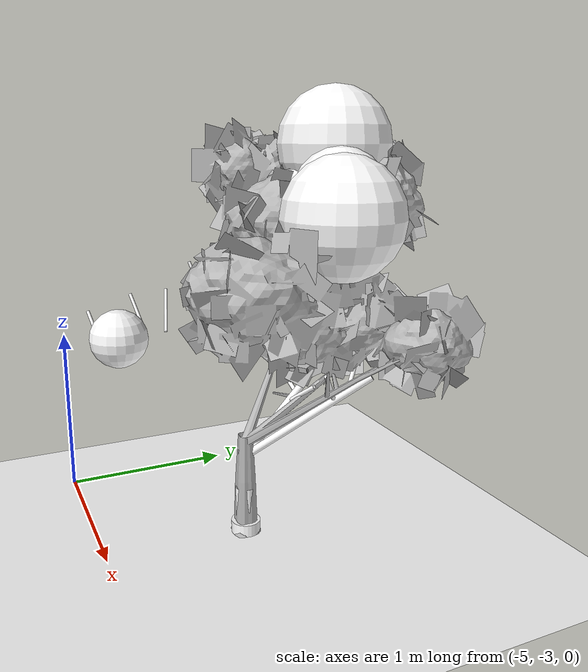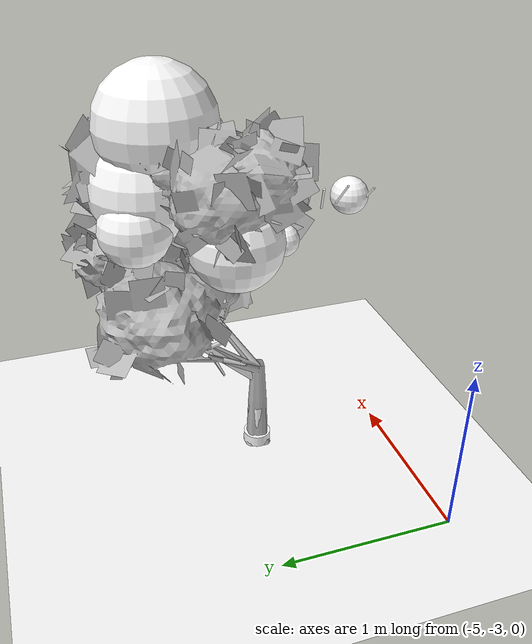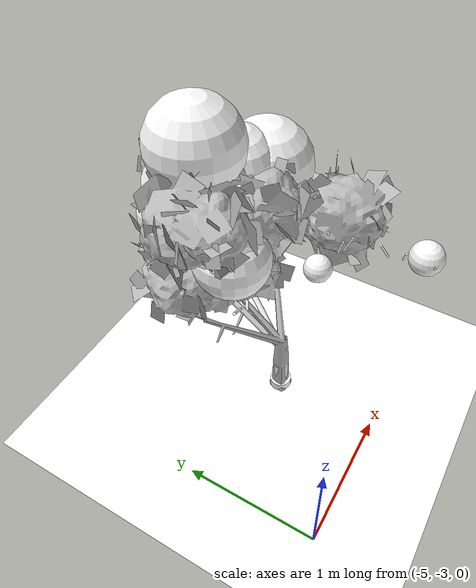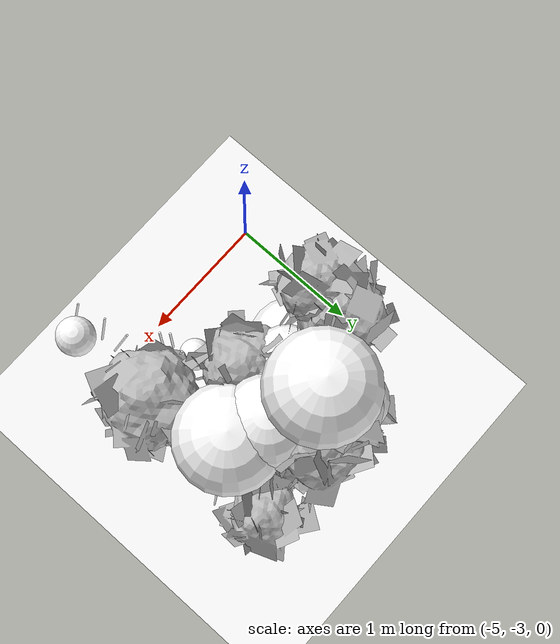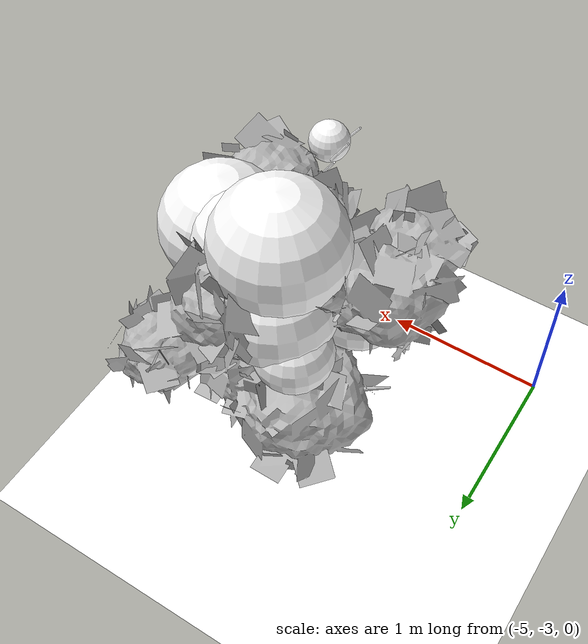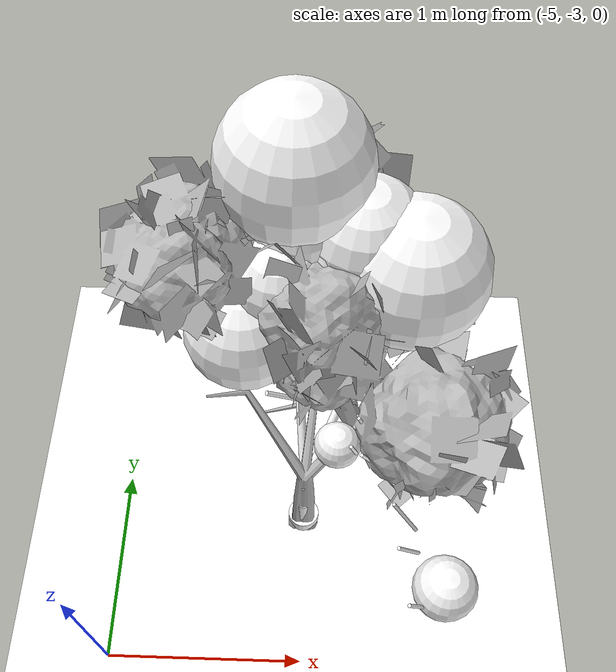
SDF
<sdf version="1.11">
 <world name="peach_orchard">
  <model name="ground">
   <static>true</static>
   <link name="link">
    <visual name="soil">
     <geometry><plane><normal>0 0 1</normal><size>32 22</size></plane></geometry>
     <material>
      <ambient>1 1 1 1</ambient>
      <diffuse>1 1 1 1</diffuse>
      <specular>0.1 0.1 0.1 1</specular>
      <pbr>
       <metal>
        <albedo_map>textures/soil_albedo.png</albedo_map>
        <normal_map type="tangent">textures/soil_normal.png</normal_map>
        <roughness>0.95</roughness>
        <metalness>0</metalness>
       </metal>
      </pbr>
     </material>
    </visual>
    <collision name="c_soil">
     <geometry><plane><normal>0 0 1</normal><size>32 22</size></plane></geometry>
    </collision>
   </link>
  </model>
  <model name="tree_r1_t2">
   <pose>-4 -2.2 0 0 0 0</pose>
   <static>true</static>
   <link name="link">
    <visual name="tree_mesh">
     <pose>0 0 0 0 0 -0.113516</pose>
     <geometry>
      <mesh><uri>model://peach_sim/meshes/peach_tree_a.glb</uri><scale>1.01518 1.01518 1.01518</scale></mesh>
     </geometry>
    </visual>
    <visual name="trunk_0">
     <pose>0 0 0.138454 0 0 0</pose>
     <geometry><cylinder><radius>0.0573517</radius><length>0.276908</length></cylinder></geometry>
     <material>
      <ambient>1 1 1 1</ambient>
      <diffuse>1 1 1 1</diffuse>
      <specular>0.1 0.1 0.1 1</specular>
      <pbr>
       <metal>
        <albedo_map>textures/bark_albedo.png</albedo_map>
        <normal_map type="tangent">textures/bark_normal.png</normal_map>
        <roughness>0.9</roughness>
        <metalness>0</metalness>
       </metal>
      </pbr>
     </material>
    </visual>
    <collision name="c_trunk_0">
     <pose>0 0 0.138454 0 0 0</pose>
     <geometry><cylinder><radius>0.0573517</radius><length>0.276908</length></cylinder></geometry>
    </collision>
    <visual name="trunk_1">
     <pose>0 0 0.390188 0 0 0</pose>
     <geometry><cylinder><radius>0.0412932</radius><length>0.226561</length></cylinder></geometry>
     <material>
      <ambient>1 1 1 1</ambient>
      <diffuse>1 1 1 1</diffuse>
      <specular>0.1 0.1 0.1 1</specular>
      <pbr>
       <metal>
        <albedo_map>textures/bark_albedo.png</albedo_map>
        <normal_map type="tangent">textures/bark_normal.png</normal_map>
        <roughness>0.9</roughness>
        <metalness>0</metalness>
       </metal>
      </pbr>
     </material>
    </visual>
    <collision name="c_trunk_1">
     <pose>0 0 0.390188 0 0 0</pose>
     <geometry><cylinder><radius>0.0412932</radius><length>0.226561</length></cylinder></geometry>
    </collision>
    <visual name="root_flare">
     <pose>0 0 0.035 0 0 0</pose>
     <geometry><cylinder><radius>0.0831599</radius><length>0.07</length></cylinder></geometry>
     <material>
      <ambient>1 1 1 1</ambient>
      <diffuse>1 1 1 1</diffuse>
      <specular>0.1 0.1 0.1 1</specular>
      <pbr>
       <metal>
        <albedo_map>textures/bark_albedo.png</albedo_map>
        <normal_map type="tangent">textures/bark_normal.png</normal_map>
        <roughness>0.95</roughness>
        <metalness>0</metalness>
       </metal>
      </pbr>
     </material>
    </visual>
    <visual name="scaffold_0">
     <pose>-0.0306816 0.296443 0.751448 0 0.802059 1.67393</pose>
     <geometry><cylinder><radius>0.022</radius><length>0.829245</length></cylinder></geometry>
     <material>
      <ambient>1 1 1 1</ambient>
      <diffuse>1 1 1 1</diffuse>
      <specular>0.1 0.1 0.1 1</specular>
      <pbr>
       <metal>
        <albedo_map>textures/bark_albedo.png</albedo_map>
        <normal_map type="tangent">textures/bark_normal.png</normal_map>
        <roughness>0.9</roughness>
        <metalness>0</metalness>
       </metal>
      </pbr>
     </material>
    </visual>
    <collision name="c_scaffold_0">
     <pose>-0.0306816 0.296443 0.751448 0 0.802059 1.67393</pose>
     <geometry><cylinder><radius>0.022</radius><length>0.829245</length></cylinder></geometry>
    </collision>
    <visual name="branchlet_0_0">
     <pose>-0.128227 0.471835 0.981139 0 0.761471 2.71418</pose>
     <geometry><cylinder><radius>0.012</radius><length>0.265386</length></cylinder></geometry>
     <material>
      <ambient>1 1 1 1</ambient>
      <diffuse>1 1 1 1</diffuse>
      <specular>0.1 0.1 0.1 1</specular>
      <pbr>
       <metal>
        <albedo_map>textures/bark_albedo.png</albedo_map>
        <normal_map type="tangent">textures/bark_normal.png</normal_map>
        <roughness>0.9</roughness>
        <metalness>0</metalness>
       </metal>
      </pbr>
     </material>
    </visual>
    <visual name="branchlet_0_1">
     <pose>-0.115673 0.303545 0.851904 0 0.88424 -2.85232</pose>
     <geometry><cylinder><radius>0.012</radius><length>0.220529</length></cylinder></geometry>
     <material>
      <ambient>1 1 1 1</ambient>
      <diffuse>1 1 1 1</diffuse>
      <specular>0.1 0.1 0.1 1</specular>
      <pbr>
       <metal>
        <albedo_map>textures/bark_albedo.png</albedo_map>
        <normal_map type="tangent">textures/bark_normal.png</normal_map>
        <roughness>0.9</roughness>
        <metalness>0</metalness>
       </metal>
      </pbr>
     </material>
    </visual>
    <visual name="branchlet_0_2">
     <pose>0.0444602 0.322134 0.796305 0 0.952363 0.511318</pose>
     <geometry><cylinder><radius>0.012</radius><length>0.206961</length></cylinder></geometry>
     <material>
      <ambient>1 1 1 1</ambient>
      <diffuse>1 1 1 1</diffuse>
      <specular>0.1 0.1 0.1 1</specular>
      <pbr>
       <metal>
        <albedo_map>textures/bark_albedo.png</albedo_map>
        <normal_map type="tangent">textures/bark_normal.png</normal_map>
        <roughness>0.9</roughness>
        <metalness>0</metalness>
       </metal>
      </pbr>
     </material>
    </visual>
    <visual name="scaffold_1">
     <pose>0.15263 0.305992 0.701326 0 0.962483 1.10811</pose>
     <geometry><cylinder><radius>0.022</radius><length>0.833391</length></cylinder></geometry>
     <material>
      <ambient>1 1 1 1</ambient>
      <diffuse>1 1 1 1</diffuse>
      <specular>0.1 0.1 0.1 1</specular>
      <pbr>
       <metal>
        <albedo_map>textures/bark_albedo.png</albedo_map>
        <normal_map type="tangent">textures/bark_normal.png</normal_map>
        <roughness>0.9</roughness>
        <metalness>0</metalness>
       </metal>
      </pbr>
     </material>
    </visual>
    <collision name="c_scaffold_1">
     <pose>0.15263 0.305992 0.701326 0 0.962483 1.10811</pose>
     <geometry><cylinder><radius>0.022</radius><length>0.833391</length></cylinder></geometry>
    </collision>
    <visual name="branchlet_1_0">
     <pose>0.257323 0.385404 0.887964 0 0.628357 -0.86781</pose>
     <geometry><cylinder><radius>0.012</radius><length>0.215607</length></cylinder></geometry>
     <material>
      <ambient>1 1 1 1</ambient>
      <diffuse>1 1 1 1</diffuse>
      <specular>0.1 0.1 0.1 1</specular>
      <pbr>
       <metal>
        <albedo_map>textures/bark_albedo.png</albedo_map>
        <normal_map type="tangent">textures/bark_normal.png</normal_map>
        <roughness>0.9</roughness>
        <metalness>0</metalness>
       </metal>
      </pbr>
     </material>
    </visual>
    <visual name="branchlet_1_1">
     <pose>0.198498 0.561749 0.954272 0 0.664178 2.24208</pose>
     <geometry><cylinder><radius>0.012</radius><length>0.261808</length></cylinder></geometry>
     <material>
      <ambient>1 1 1 1</ambient>
      <diffuse>1 1 1 1</diffuse>
      <specular>0.1 0.1 0.1 1</specular>
      <pbr>
       <metal>
        <albedo_map>textures/bark_albedo.png</albedo_map>
        <normal_map type="tangent">textures/bark_normal.png</normal_map>
        <roughness>0.9</roughness>
        <metalness>0</metalness>
       </metal>
      </pbr>
     </material>
    </visual>
    <visual name="canopy_0">
     <pose>0.149237 0.399103 1.8772 0 0 0</pose>
     <geometry><sphere><radius>0.191582</radius></sphere></geometry>
     <material>
      <ambient>1 1 1 1</ambient>
      <diffuse>1 1 1 1</diffuse>
      <specular>0.1 0.1 0.1 1</specular>
      <pbr>
       <metal>
        <albedo_map>textures/leaf_albedo.png</albedo_map>
        <normal_map type="tangent">textures/leaf_normal.png</normal_map>
        <roughness>0.85</roughness>
        <metalness>0</metalness>
       </metal>
      </pbr>
     </material>
    </visual>
    <collision name="c_canopy_0">
     <pose>0.149237 0.399103 1.8772 0 0 0</pose>
     <geometry><sphere><radius>0.191582</radius></sphere></geometry>
    </collision>
    <visual name="canopy_1">
     <pose>0.206968 0.442193 1.8919 0 0 0</pose>
     <geometry><sphere><radius>0.252495</radius></sphere></geometry>
     <material>
      <ambient>1 1 1 1</ambient>
      <diffuse>1 1 1 1</diffuse>
      <specular>0.1 0.1 0.1 1</specular>
      <pbr>
       <metal>
        <albedo_map>textures/leaf_albedo.png</albedo_map>
        <normal_map type="tangent">textures/leaf_normal.png</normal_map>
        <roughness>0.85</roughness>
        <metalness>0</metalness>
       </metal>
      </pbr>
     </material>
    </visual>
    <collision name="c_canopy_1">
     <pose>0.206968 0.442193 1.8919 0 0 0</pose>
     <geometry><sphere><radius>0.252495</radius></sphere></geometry>
    </collision>
    <visual name="canopy_2">
     <pose>-0.229686 0.719252 1.68493 0 0 0</pose>
     <geometry><sphere><radius>0.188027</radius></sphere></geometry>
     <material>
      <ambient>1 1 1 1</ambient>
      <diffuse>1 1 1 1</diffuse>
      <specular>0.1 0.1 0.1 1</specular>
      <pbr>
       <metal>
        <albedo_map>textures/leaf_albedo.png</albedo_map>
        <normal_map type="tangent">textures/leaf_normal.png</normal_map>
        <roughness>0.85</roughness>
        <metalness>0</metalness>
       </metal>
      </pbr>
     </material>
    </visual>
    <collision name="c_canopy_2">
     <pose>-0.229686 0.719252 1.68493 0 0 0</pose>
     <geometry><sphere><radius>0.188027</radius></sphere></geometry>
    </collision>
    <visual name="canopy_3">
     <pose>-0.0508081 0.397679 1.66043 0 0 0</pose>
     <geometry><sphere><radius>0.193955</radius></sphere></geometry>
     <material>
      <ambient>1 1 1 1</ambient>
      <diffuse>1 1 1 1</diffuse>
      <specular>0.1 0.1 0.1 1</specular>
      <pbr>
       <metal>
        <albedo_map>textures/leaf_albedo.png</albedo_map>
        <normal_map type="tangent">textures/leaf_normal.png</normal_map>
        <roughness>0.85</roughness>
        <metalness>0</metalness>
       </metal>
      </pbr>
     </material>
    </visual>
    <visual name="canopy_4">
     <pose>-0.0941077 0.639702 1.83614 0 0 0</pose>
     <geometry><sphere><radius>0.281677</radius></sphere></geometry>
     <material>
      <ambient>1 1 1 1</ambient>
      <diffuse>1 1 1 1</diffuse>
      <specular>0.1 0.1 0.1 1</specular>
      <pbr>
       <metal>
        <albedo_map>textures/leaf_albedo.png</albedo_map>
        <normal_map type="tangent">textures/leaf_normal.png</normal_map>
        <roughness>0.85</roughness>
        <metalness>0</metalness>
       </metal>
      </pbr>
     </material>
    </visual>
    <visual name="canopy_5">
     <pose>-0.0738279 0.558093 2.14999 0 0 0</pose>
     <geometry><sphere><radius>0.312179</radius></sphere></geometry>
     <material>
      <ambient>1 1 1 1</ambient>
      <diffuse>1 1 1 1</diffuse>
      <specular>0.1 0.1 0.1 1</specular>
      <pbr>
       <metal>
        <albedo_map>textures/leaf_albedo.png</albedo_map>
        <normal_map type="tangent">textures/leaf_normal.png</normal_map>
        <roughness>0.85</roughness>
        <metalness>0</metalness>
       </metal>
      </pbr>
     </material>
    </visual>
    <visual name="canopy_6">
     <pose>-0.270563 0.219365 1.55882 0 0 0</pose>
     <geometry><sphere><radius>0.255148</radius></sphere></geometry>
     <material>
      <ambient>1 1 1 1</ambient>
      <diffuse>1 1 1 1</diffuse>
      <specular>0.1 0.1 0.1 1</specular>
      <pbr>
       <metal>
        <albedo_map>textures/leaf_albedo.png</albedo_map>
        <normal_map type="tangent">textures/leaf_normal.png</normal_map>
        <roughness>0.85</roughness>
        <metalness>0</metalness>
       </metal>
      </pbr>
     </material>
    </visual>
    <visual name="canopy_7">
     <pose>0.403296 0.345885 1.80386 0 0 0</pose>
     <geometry><sphere><radius>0.312029</radius></sphere></geometry>
     <material>
      <ambient>1 1 1 1</ambient>
      <diffuse>1 1 1 1</diffuse>
      <specular>0.1 0.1 0.1 1</specular>
      <pbr>
       <metal>
        <albedo_map>textures/leaf_albedo.png</albedo_map>
        <normal_map type="tangent">textures/leaf_normal.png</normal_map>
        <roughness>0.85</roughness>
        <metalness>0</metalness>
       </metal>
      </pbr>
     </material>
    </visual>
    <visual name="canopy_8">
     <pose>-0.125738 0.297928 1.79509 0 0 0</pose>
     <geometry><sphere><radius>0.198647</radius></sphere></geometry>
     <material>
      <ambient>1 1 1 1</ambient>
      <diffuse>1 1 1 1</diffuse>
      <specular>0.1 0.1 0.1 1</specular>
      <pbr>
       <metal>
        <albedo_map>textures/leaf_albedo.png</albedo_map>
        <normal_map type="tangent">textures/leaf_normal.png</normal_map>
        <roughness>0.85</roughness>
        <metalness>0</metalness>
       </metal>
      </pbr>
     </material>
    </visual>
    <visual name="canopy_9">
     <pose>-0.0588006 0.441253 1.93065 0 0 0</pose>
     <geometry><sphere><radius>0.187553</radius></sphere></geometry>
     <material>
      <ambient>1 1 1 1</ambient>
      <diffuse>1 1 1 1</diffuse>
      <specular>0.1 0.1 0.1 1</specular>
      <pbr>
       <metal>
        <albedo_map>textures/leaf_albedo.png</albedo_map>
        <normal_map type="tangent">textures/leaf_normal.png</normal_map>
        <roughness>0.85</roughness>
        <metalness>0</metalness>
       </metal>
      </pbr>
     </material>
    </visual>
    <visual name="canopy_10">
     <pose>0.0736375 0.304363 1.63922 0 0 0</pose>
     <geometry><sphere><radius>0.212964</radius></sphere></geometry>
     <material>
      <ambient>1 1 1 1</ambient>
      <diffuse>1 1 1 1</diffuse>
      <specular>0.1 0.1 0.1 1</specular>
      <pbr>
       <metal>
        <albedo_map>textures/leaf_albedo.png</albedo_map>
        <normal_map type="tangent">textures/leaf_normal.png</normal_map>
        <roughness>0.85</roughness>
        <metalness>0</metalness>
       </metal>
      </pbr>
     </material>
    </visual>
    <visual name="foliage_0">
     <pose>0.45756 -0.0311253 1.41818 0 0 0</pose>
     <geometry><sphere><radius>0.087491</radius></sphere></geometry>
     <material>
      <ambient>1 1 1 1</ambient>
      <diffuse>1 1 1 1</diffuse>
      <specular>0.1 0.1 0.1 1</specular>
      <pbr>
       <metal>
        <albedo_map>textures/leaf_albedo.png</albedo_map>
        <normal_map type="tangent">textures/leaf_normal.png</normal_map>
        <roughness>0.85</roughness>
        <metalness>0</metalness>
       </metal>
      </pbr>
     </material>
    </visual>
    <visual name="foliage_4">
     <pose>0.127946 -0.187804 1.3274 0 0 0</pose>
     <geometry><sphere><radius>0.097657</radius></sphere></geometry>
     <material>
      <ambient>1 1 1 1</ambient>
      <diffuse>1 1 1 1</diffuse>
      <specular>0.1 0.1 0.1 1</specular>
      <pbr>
       <metal>
        <albedo_map>textures/leaf_albedo.png</albedo_map>
        <normal_map type="tangent">textures/leaf_normal.png</normal_map>
        <roughness>0.85</roughness>
        <metalness>0</metalness>
       </metal>
      </pbr>
     </material>
    </visual>
    <visual name="foliage_8">
     <pose>0.527552 -0.787859 1.36879 0 0 0</pose>
     <geometry><sphere><radius>0.122603</radius></sphere></geometry>
     <material>
      <ambient>1 1 1 1</ambient>
      <diffuse>1 1 1 1</diffuse>
      <specular>0.1 0.1 0.1 1</specular>
      <pbr>
       <metal>
        <albedo_map>textures/leaf_albedo.png</albedo_map>
        <normal_map type="tangent">textures/leaf_normal.png</normal_map>
        <roughness>0.85</roughness>
        <metalness>0</metalness>
       </metal>
      </pbr>
     </material>
    </visual>
    <visual name="twig_0">
     <pose>0.427572 -0.041569 1.48065 0 0.715196 2.9548</pose>
     <geometry><cylinder><radius>0.007</radius><length>0.140662</length></cylinder></geometry>
     <material>
      <ambient>1 1 1 1</ambient>
      <diffuse>1 1 1 1</diffuse>
      <specular>0.1 0.1 0.1 1</specular>
      <pbr>
       <metal>
        <albedo_map>textures/bark_albedo.png</albedo_map>
        <normal_map type="tangent">textures/bark_normal.png</normal_map>
        <roughness>0.9</roughness>
        <metalness>0</metalness>
       </metal>
      </pbr>
     </material>
    </visual>
    <visual name="twig_1">
     <pose>0.437388 -0.063511 1.50678 0 0.658535 -2.66314</pose>
     <geometry><cylinder><radius>0.007</radius><length>0.131058</length></cylinder></geometry>
     <material>
      <ambient>1 1 1 1</ambient>
      <diffuse>1 1 1 1</diffuse>
      <specular>0.1 0.1 0.1 1</specular>
      <pbr>
       <metal>
        <albedo_map>textures/bark_albedo.png</albedo_map>
        <normal_map type="tangent">textures/bark_normal.png</normal_map>
        <roughness>0.9</roughness>
        <metalness>0</metalness>
       </metal>
      </pbr>
     </material>
    </visual>
    <visual name="twig_2">
     <pose>0.476735 0.0891855 1.51309 0 0.448156 -2.5875</pose>
     <geometry><cylinder><radius>0.007</radius><length>0.105457</length></cylinder></geometry>
     <material>
      <ambient>1 1 1 1</ambient>
      <diffuse>1 1 1 1</diffuse>
      <specular>0.1 0.1 0.1 1</specular>
      <pbr>
       <metal>
        <albedo_map>textures/bark_albedo.png</albedo_map>
        <normal_map type="tangent">textures/bark_normal.png</normal_map>
        <roughness>0.9</roughness>
        <metalness>0</metalness>
       </metal>
      </pbr>
     </material>
    </visual>
    <visual name="twig_3">
     <pose>0.228064 -0.336166 1.52479 0 0.412961 -2.21697</pose>
     <geometry><cylinder><radius>0.007</radius><length>0.19809</length></cylinder></geometry>
     <material>
      <ambient>1 1 1 1</ambient>
      <diffuse>1 1 1 1</diffuse>
      <specular>0.1 0.1 0.1 1</specular>
      <pbr>
       <metal>
        <albedo_map>textures/bark_albedo.png</albedo_map>
        <normal_map type="tangent">textures/bark_normal.png</normal_map>
        <roughness>0.9</roughness>
        <metalness>0</metalness>
       </metal>
      </pbr>
     </material>
    </visual>
    <visual name="twig_4">
     <pose>0.181305 -0.305777 1.52717 0 0.347649 -2.25638</pose>
     <geometry><cylinder><radius>0.007</radius><length>0.142537</length></cylinder></geometry>
     <material>
      <ambient>1 1 1 1</ambient>
      <diffuse>1 1 1 1</diffuse>
      <specular>0.1 0.1 0.1 1</specular>
      <pbr>
       <metal>
        <albedo_map>textures/bark_albedo.png</albedo_map>
        <normal_map type="tangent">textures/bark_normal.png</normal_map>
        <roughness>0.9</roughness>
        <metalness>0</metalness>
       </metal>
      </pbr>
     </material>
    </visual>
    <visual name="twig_5">
     <pose>0.226375 -0.208608 1.53139 0 0.418903 3.0038</pose>
     <geometry><cylinder><radius>0.007</radius><length>0.146084</length></cylinder></geometry>
     <material>
      <ambient>1 1 1 1</ambient>
      <diffuse>1 1 1 1</diffuse>
      <specular>0.1 0.1 0.1 1</specular>
      <pbr>
       <metal>
        <albedo_map>textures/bark_albedo.png</albedo_map>
        <normal_map type="tangent">textures/bark_normal.png</normal_map>
        <roughness>0.9</roughness>
        <metalness>0</metalness>
       </metal>
      </pbr>
     </material>
    </visual>
    <visual name="twig_6">
     <pose>0.381566 -0.539515 1.43558 0 0.572431 2.81221</pose>
     <geometry><cylinder><radius>0.007</radius><length>0.201665</length></cylinder></geometry>
     <material>
      <ambient>1 1 1 1</ambient>
      <diffuse>1 1 1 1</diffuse>
      <specular>0.1 0.1 0.1 1</specular>
      <pbr>
       <metal>
        <albedo_map>textures/bark_albedo.png</albedo_map>
        <normal_map type="tangent">textures/bark_normal.png</normal_map>
        <roughness>0.9</roughness>
        <metalness>0</metalness>
       </metal>
      </pbr>
     </material>
    </visual>
    <visual name="twig_7">
     <pose>0.389146 -0.672215 1.44297 0 0.599961 -2.80337</pose>
     <geometry><cylinder><radius>0.007</radius><length>0.17252</length></cylinder></geometry>
     <material>
      <ambient>1 1 1 1</ambient>
      <diffuse>1 1 1 1</diffuse>
      <specular>0.1 0.1 0.1 1</specular>
      <pbr>
       <metal>
        <albedo_map>textures/bark_albedo.png</albedo_map>
        <normal_map type="tangent">textures/bark_normal.png</normal_map>
        <roughness>0.9</roughness>
        <metalness>0</metalness>
       </metal>
      </pbr>
     </material>
    </visual>
    <visual name="twig_8">
     <pose>0.4308 -0.867826 1.39606 0 0.669736 -2.86109</pose>
     <geometry><cylinder><radius>0.007</radius><length>0.170379</length></cylinder></geometry>
     <material>
      <ambient>1 1 1 1</ambient>
      <diffuse>1 1 1 1</diffuse>
      <specular>0.1 0.1 0.1 1</specular>
      <pbr>
       <metal>
        <albedo_map>textures/bark_albedo.png</albedo_map>
        <normal_map type="tangent">textures/bark_normal.png</normal_map>
        <roughness>0.9</roughness>
        <metalness>0</metalness>
       </metal>
      </pbr>
     </material>
    </visual>
   </link>
  </model>
 </world>
</sdf>
